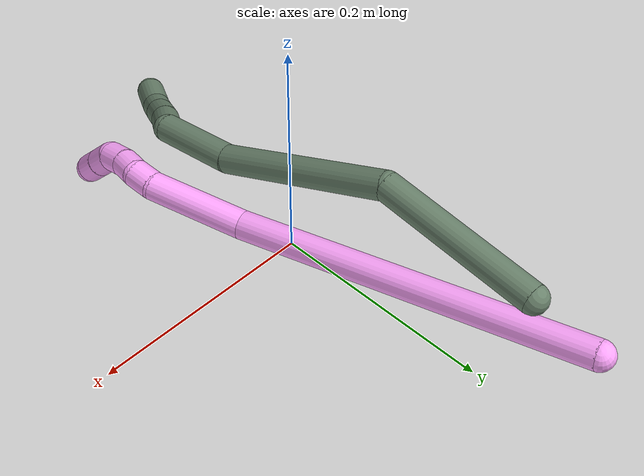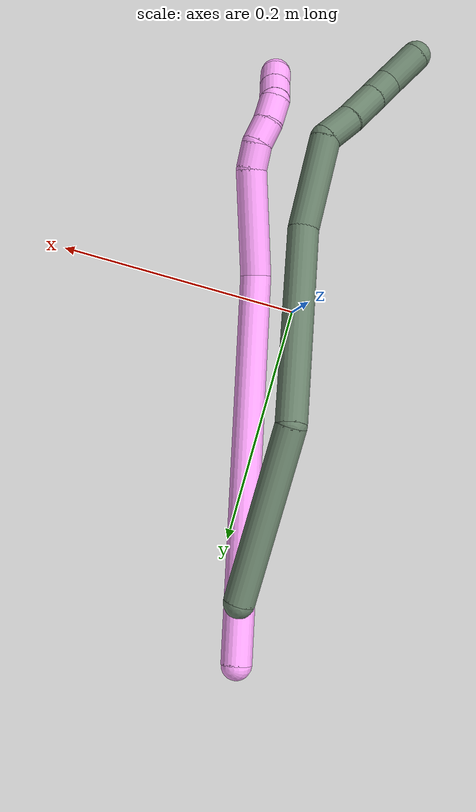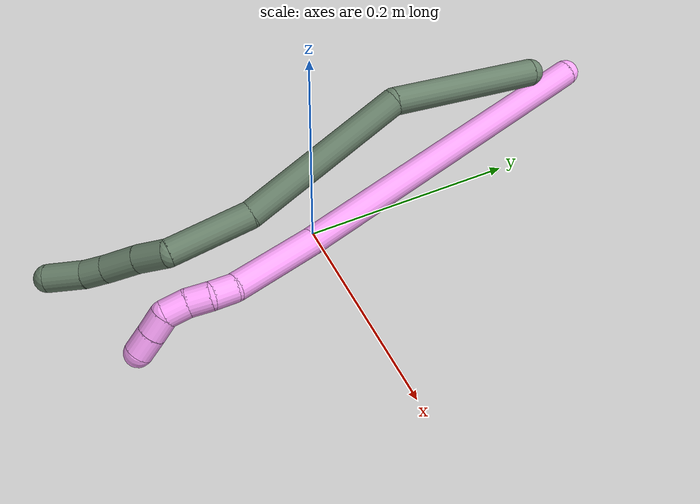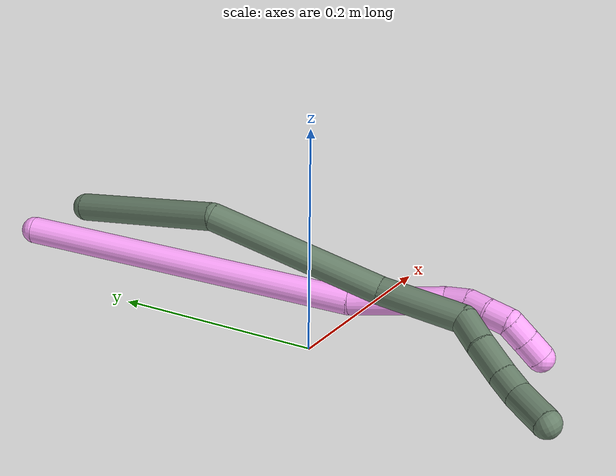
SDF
<sdf version="1.7">
 <world name="default">
  <model name="4">
   <static>0</static>
   <link name="4">
    <collision name="collision-cylinder-e_1_1_4">
     <pose>0.018688 -0.151431 -0.032222 1.78045 0.120127 0.148284</pose>
     <geometry><cylinder><radius>0.0125</radius><length>0.31189</length></cylinder></geometry>
     <surface>
      <friction><ode><mu>1.16</mu><mu2>1.16</mu2><slip1>0</slip1><slip2>0</slip2></ode></friction>
      <contact><ode><kp>1e+06</kp><kd>1</kd><max_vel>0</max_vel><min_depth>0.001</min_depth></ode></contact>
     </surface>
    </collision>
    <visual name="visual-cylinder-e_1_1_4">
     <pose>0.018688 -0.151431 -0.032222 1.78045 0.120127 0.148284</pose>
     <geometry><cylinder><radius>0.0125</radius><length>0.31189</length></cylinder></geometry>
     <material><ambient>1 0.65098 0.996078 1</ambient></material>
    </visual>
    <collision name="collision-cylinder-e_2_4_5">
     <pose>0.042596 -0.345726 -0.063719 1.55389 0.121163 0.119137</pose>
     <geometry><cylinder><radius>0.0125</radius><length>0.086374</length></cylinder></geometry>
     <surface>
      <friction><ode><mu>1.16</mu><mu2>1.16</mu2><slip1>0</slip1><slip2>0</slip2></ode></friction>
      <contact><ode><kp>1e+06</kp><kd>1</kd><max_vel>0</max_vel><min_depth>0.001</min_depth></ode></contact>
     </surface>
    </collision>
    <visual name="visual-cylinder-e_2_4_5">
     <pose>0.042596 -0.345726 -0.063719 1.55389 0.121163 0.119137</pose>
     <geometry><cylinder><radius>0.0125</radius><length>0.086374</length></cylinder></geometry>
     <material><ambient>1 0.65098 0.996078 1</ambient></material>
    </visual>
    <collision name="collision-cylinder-e_3_5_6">
     <pose>0.046738 -0.398944 -0.064111 1.67826 -0.103225 -0.114935</pose>
     <geometry><cylinder><radius>0.0125</radius><length>0.020938</length></cylinder></geometry>
     <surface>
      <friction><ode><mu>1.16</mu><mu2>1.16</mu2><slip1>0</slip1><slip2>0</slip2></ode></friction>
      <contact><ode><kp>1e+06</kp><kd>1</kd><max_vel>0</max_vel><min_depth>0.001</min_depth></ode></contact>
     </surface>
    </collision>
    <visual name="visual-cylinder-e_3_5_6">
     <pose>0.046738 -0.398944 -0.064111 1.67826 -0.103225 -0.114935</pose>
     <geometry><cylinder><radius>0.0125</radius><length>0.020938</length></cylinder></geometry>
     <material><ambient>1 0.65098 0.996078 1</ambient></material>
    </visual>
    <collision name="collision-cylinder-e_4_6_7">
     <pose>0.043375 -0.418192 -0.069225 1.99308 -0.229998 -0.353343</pose>
     <geometry><cylinder><radius>0.0125</radius><length>0.020032</length></cylinder></geometry>
     <surface>
      <friction><ode><mu>1.16</mu><mu2>1.16</mu2><slip1>0</slip1><slip2>0</slip2></ode></friction>
      <contact><ode><kp>1e+06</kp><kd>1</kd><max_vel>0</max_vel><min_depth>0.001</min_depth></ode></contact>
     </surface>
    </collision>
    <visual name="visual-cylinder-e_4_6_7">
     <pose>0.043375 -0.418192 -0.069225 1.99308 -0.229998 -0.353343</pose>
     <geometry><cylinder><radius>0.0125</radius><length>0.020032</length></cylinder></geometry>
     <material><ambient>1 0.65098 0.996078 1</ambient></material>
    </visual>
    <collision name="collision-cylinder-e_5_7_8">
     <pose>0.040615 -0.43642 -0.077507 2.00123 -0.046429 -0.072388</pose>
     <geometry><cylinder><radius>0.0125</radius><length>0.020561</length></cylinder></geometry>
     <surface>
      <friction><ode><mu>1.16</mu><mu2>1.16</mu2><slip1>0</slip1><slip2>0</slip2></ode></friction>
      <contact><ode><kp>1e+06</kp><kd>1</kd><max_vel>0</max_vel><min_depth>0.001</min_depth></ode></contact>
     </surface>
    </collision>
    <visual name="visual-cylinder-e_5_7_8">
     <pose>0.040615 -0.43642 -0.077507 2.00123 -0.046429 -0.072388</pose>
     <geometry><cylinder><radius>0.0125</radius><length>0.020561</length></cylinder></geometry>
     <material><ambient>1 0.65098 0.996078 1</ambient></material>
    </visual>
    <collision name="collision-cylinder-e_6_8_9">
     <pose>0.043668 -0.451801 -0.088985 2.44247 0.359331 0.92448</pose>
     <geometry><cylinder><radius>0.0125</radius><length>0.020076</length></cylinder></geometry>
     <surface>
      <friction><ode><mu>1.16</mu><mu2>1.16</mu2><slip1>0</slip1><slip2>0</slip2></ode></friction>
      <contact><ode><kp>1e+06</kp><kd>1</kd><max_vel>0</max_vel><min_depth>0.001</min_depth></ode></contact>
     </surface>
    </collision>
    <visual name="visual-cylinder-e_6_8_9">
     <pose>0.043668 -0.451801 -0.088985 2.44247 0.359331 0.92448</pose>
     <geometry><cylinder><radius>0.0125</radius><length>0.020076</length></cylinder></geometry>
     <material><ambient>1 0.65098 0.996078 1</ambient></material>
    </visual>
    <collision name="collision-cylinder-e_7_9_2">
     <pose>0.050483 -0.463897 -0.103519 2.45249 0.332542 0.874861</pose>
     <geometry><cylinder><radius>0.0125</radius><length>0.020129</length></cylinder></geometry>
     <surface>
      <friction><ode><mu>1.16</mu><mu2>1.16</mu2><slip1>0</slip1><slip2>0</slip2></ode></friction>
      <contact><ode><kp>1e+06</kp><kd>1</kd><max_vel>0</max_vel><min_depth>0.001</min_depth></ode></contact>
     </surface>
    </collision>
    <visual name="visual-cylinder-e_7_9_2">
     <pose>0.050483 -0.463897 -0.103519 2.45249 0.332542 0.874861</pose>
     <geometry><cylinder><radius>0.0125</radius><length>0.020129</length></cylinder></geometry>
     <material><ambient>1 0.65098 0.996078 1</ambient></material>
    </visual>
    <collision name="collision-sphere-2">
     <pose>0.053769 -0.469946 -0.110862 0 -0 0</pose>
     <geometry><sphere><radius>0.0125</radius></sphere></geometry>
     <surface>
      <friction><ode><mu>1.16</mu><mu2>1.16</mu2><slip1>0</slip1><slip2>0</slip2></ode></friction>
      <contact><ode><kp>1e+06</kp><kd>1</kd><max_vel>0</max_vel><min_depth>0.001</min_depth></ode></contact>
     </surface>
    </collision>
    <visual name="visual-sphere-2">
     <pose>0.053769 -0.469946 -0.110862 0 -0 0</pose>
     <geometry><sphere><radius>0.0125</radius></sphere></geometry>
     <material><ambient>1 0.65098 0.996078 1</ambient></material>
    </visual>
    <collision name="collision-sphere-9">
     <pose>0.047197 -0.457848 -0.096177 0 -0 0</pose>
     <geometry><sphere><radius>0.0125</radius></sphere></geometry>
     <surface>
      <friction><ode><mu>1.16</mu><mu2>1.16</mu2><slip1>0</slip1><slip2>0</slip2></ode></friction>
      <contact><ode><kp>1e+06</kp><kd>1</kd><max_vel>0</max_vel><min_depth>0.001</min_depth></ode></contact>
     </surface>
    </collision>
    <visual name="visual-sphere-9">
     <pose>0.047197 -0.457848 -0.096177 0 -0 0</pose>
     <geometry><sphere><radius>0.0125</radius></sphere></geometry>
     <material><ambient>1 0.65098 0.996078 1</ambient></material>
    </visual>
    <collision name="collision-sphere-4">
     <pose>0.037377 -0.302862 -0.064444 0 -0 0</pose>
     <geometry><sphere><radius>0.0125</radius></sphere></geometry>
     <surface>
      <friction><ode><mu>1.16</mu><mu2>1.16</mu2><slip1>0</slip1><slip2>0</slip2></ode></friction>
      <contact><ode><kp>1e+06</kp><kd>1</kd><max_vel>0</max_vel><min_depth>0.001</min_depth></ode></contact>
     </surface>
    </collision>
    <visual name="visual-sphere-4">
     <pose>0.037377 -0.302862 -0.064444 0 -0 0</pose>
     <geometry><sphere><radius>0.0125</radius></sphere></geometry>
     <material><ambient>1 0.65098 0.996078 1</ambient></material>
    </visual>
    <collision name="collision-sphere-1">
     <geometry><sphere><radius>0.0125</radius></sphere></geometry>
     <surface>
      <friction><ode><mu>1.16</mu><mu2>1.16</mu2><slip1>0</slip1><slip2>0</slip2></ode></friction>
      <contact><ode><kp>1e+06</kp><kd>1</kd><max_vel>0</max_vel><min_depth>0.001</min_depth></ode></contact>
     </surface>
    </collision>
    <visual name="visual-sphere-1">
     <geometry><sphere><radius>0.0125</radius></sphere></geometry>
     <material><ambient>1 0.65098 0.996078 1</ambient></material>
    </visual>
    <collision name="collision-sphere-8">
     <pose>0.040138 -0.445753 -0.081792 0 -0 0</pose>
     <geometry><sphere><radius>0.0125</radius></sphere></geometry>
     <surface>
      <friction><ode><mu>1.16</mu><mu2>1.16</mu2><slip1>0</slip1><slip2>0</slip2></ode></friction>
      <contact><ode><kp>1e+06</kp><kd>1</kd><max_vel>0</max_vel><min_depth>0.001</min_depth></ode></contact>
     </surface>
    </collision>
    <visual name="visual-sphere-8">
     <pose>0.040138 -0.445753 -0.081792 0 -0 0</pose>
     <geometry><sphere><radius>0.0125</radius></sphere></geometry>
     <material><ambient>1 0.65098 0.996078 1</ambient></material>
    </visual>
    <collision name="collision-sphere-5">
     <pose>0.047816 -0.388591 -0.062994 0 -0 0</pose>
     <geometry><sphere><radius>0.0125</radius></sphere></geometry>
     <surface>
      <friction><ode><mu>1.16</mu><mu2>1.16</mu2><slip1>0</slip1><slip2>0</slip2></ode></friction>
      <contact><ode><kp>1e+06</kp><kd>1</kd><max_vel>0</max_vel><min_depth>0.001</min_depth></ode></contact>
     </surface>
    </collision>
    <visual name="visual-sphere-5">
     <pose>0.047816 -0.388591 -0.062994 0 -0 0</pose>
     <geometry><sphere><radius>0.0125</radius></sphere></geometry>
     <material><ambient>1 0.65098 0.996078 1</ambient></material>
    </visual>
    <collision name="collision-sphere-6">
     <pose>0.045659 -0.409297 -0.065228 0 -0 0</pose>
     <geometry><sphere><radius>0.0125</radius></sphere></geometry>
     <surface>
      <friction><ode><mu>1.16</mu><mu2>1.16</mu2><slip1>0</slip1><slip2>0</slip2></ode></friction>
      <contact><ode><kp>1e+06</kp><kd>1</kd><max_vel>0</max_vel><min_depth>0.001</min_depth></ode></contact>
     </surface>
    </collision>
    <visual name="visual-sphere-6">
     <pose>0.045659 -0.409297 -0.065228 0 -0 0</pose>
     <geometry><sphere><radius>0.0125</radius></sphere></geometry>
     <material><ambient>1 0.65098 0.996078 1</ambient></material>
    </visual>
    <collision name="collision-sphere-7">
     <pose>0.041092 -0.427087 -0.073222 0 -0 0</pose>
     <geometry><sphere><radius>0.0125</radius></sphere></geometry>
     <surface>
      <friction><ode><mu>1.16</mu><mu2>1.16</mu2><slip1>0</slip1><slip2>0</slip2></ode></friction>
      <contact><ode><kp>1e+06</kp><kd>1</kd><max_vel>0</max_vel><min_depth>0.001</min_depth></ode></contact>
     </surface>
    </collision>
    <visual name="visual-sphere-7">
     <pose>0.041092 -0.427087 -0.073222 0 -0 0</pose>
     <geometry><sphere><radius>0.0125</radius></sphere></geometry>
     <material><ambient>1 0.65098 0.996078 1</ambient></material>
    </visual>
    <inertial>
     <pose>0.028167 -0.242407 -0.047493 0 -0 0</pose>
     <mass>0.5</mass>
     <inertia>
      <ixx>0.002942</ixx>
      <ixy>0</ixy>
      <ixz>0</ixz>
      <iyy>-0.000135</iyy>
      <iyz>0</iyz>
      <izz>0.002209</izz>
     </inertia>
    </inertial>
   </link>
   <pose>-0.030784 0.284174 0.06647 -0.157335 0.429242 0.135532</pose>
  </model>
  <model name="17">
   <static>0</static>
   <link name="17">
    <collision name="collision-cylinder-e_1_1_4">
     <pose>-0.008477 -0.064928 0.029468 1.14474 -0.118339 -0.0763</pose>
     <geometry><cylinder><radius>0.0125</radius><length>0.143608</length></cylinder></geometry>
     <surface>
      <friction><ode><mu>1.16</mu><mu2>1.16</mu2><slip1>0</slip1><slip2>0</slip2></ode></friction>
      <contact><ode><kp>1e+06</kp><kd>1</kd><max_vel>0</max_vel><min_depth>0.001</min_depth></ode></contact>
     </surface>
    </collision>
    <visual name="visual-cylinder-e_1_1_4">
     <pose>-0.008477 -0.064928 0.029468 1.14474 -0.118339 -0.0763</pose>
     <geometry><cylinder><radius>0.0125</radius><length>0.143608</length></cylinder></geometry>
     <material><ambient>0.415686 0.509804 0.423529 1</ambient></material>
    </visual>
    <collision name="collision-cylinder-e_2_4_5">
     <pose>-0.037675 -0.179601 0.118269 0.697737 -0.261478 -0.095585</pose>
     <geometry><cylinder><radius>0.0125</radius><length>0.160305</length></cylinder></geometry>
     <surface>
      <friction><ode><mu>1.16</mu><mu2>1.16</mu2><slip1>0</slip1><slip2>0</slip2></ode></friction>
      <contact><ode><kp>1e+06</kp><kd>1</kd><max_vel>0</max_vel><min_depth>0.001</min_depth></ode></contact>
     </surface>
    </collision>
    <visual name="visual-cylinder-e_2_4_5">
     <pose>-0.037675 -0.179601 0.118269 0.697737 -0.261478 -0.095585</pose>
     <geometry><cylinder><radius>0.0125</radius><length>0.160305</length></cylinder></geometry>
     <material><ambient>0.415686 0.509804 0.423529 1</ambient></material>
    </visual>
    <collision name="collision-cylinder-e_3_5_6">
     <pose>-0.063384 -0.259045 0.201322 0.896834 -0.130522 -0.062863</pose>
     <geometry><cylinder><radius>0.0125</radius><length>0.076668</length></cylinder></geometry>
     <surface>
      <friction><ode><mu>1.16</mu><mu2>1.16</mu2><slip1>0</slip1><slip2>0</slip2></ode></friction>
      <contact><ode><kp>1e+06</kp><kd>1</kd><max_vel>0</max_vel><min_depth>0.001</min_depth></ode></contact>
     </surface>
    </collision>
    <visual name="visual-cylinder-e_3_5_6">
     <pose>-0.063384 -0.259045 0.201322 0.896834 -0.130522 -0.062863</pose>
     <geometry><cylinder><radius>0.0125</radius><length>0.076668</length></cylinder></geometry>
     <material><ambient>0.415686 0.509804 0.423529 1</ambient></material>
    </visual>
    <collision name="collision-cylinder-e_4_6_7">
     <pose>-0.061559 -0.296306 0.235796 0.612955 0.478212 0.153976</pose>
     <geometry><cylinder><radius>0.0125</radius><length>0.029616</length></cylinder></geometry>
     <surface>
      <friction><ode><mu>1.16</mu><mu2>1.16</mu2><slip1>0</slip1><slip2>0</slip2></ode></friction>
      <contact><ode><kp>1e+06</kp><kd>1</kd><max_vel>0</max_vel><min_depth>0.001</min_depth></ode></contact>
     </surface>
    </collision>
    <visual name="visual-cylinder-e_4_6_7">
     <pose>-0.061559 -0.296306 0.235796 0.612955 0.478212 0.153976</pose>
     <geometry><cylinder><radius>0.0125</radius><length>0.029616</length></cylinder></geometry>
     <material><ambient>0.415686 0.509804 0.423529 1</ambient></material>
    </visual>
    <collision name="collision-cylinder-e_5_7_8">
     <pose>-0.048591 -0.311997 0.259237 0.569726 0.387723 0.114853</pose>
     <geometry><cylinder><radius>0.0125</radius><length>0.032551</length></cylinder></geometry>
     <surface>
      <friction><ode><mu>1.16</mu><mu2>1.16</mu2><slip1>0</slip1><slip2>0</slip2></ode></friction>
      <contact><ode><kp>1e+06</kp><kd>1</kd><max_vel>0</max_vel><min_depth>0.001</min_depth></ode></contact>
     </surface>
    </collision>
    <visual name="visual-cylinder-e_5_7_8">
     <pose>-0.048591 -0.311997 0.259237 0.569726 0.387723 0.114853</pose>
     <geometry><cylinder><radius>0.0125</radius><length>0.032551</length></cylinder></geometry>
     <material><ambient>0.415686 0.509804 0.423529 1</ambient></material>
    </visual>
    <collision name="collision-cylinder-e_6_8_9">
     <pose>-0.038365 -0.326089 0.279924 0.640704 0.38746 0.130001</pose>
     <geometry><cylinder><radius>0.0125</radius><length>0.021557</length></cylinder></geometry>
     <surface>
      <friction><ode><mu>1.16</mu><mu2>1.16</mu2><slip1>0</slip1><slip2>0</slip2></ode></friction>
      <contact><ode><kp>1e+06</kp><kd>1</kd><max_vel>0</max_vel><min_depth>0.001</min_depth></ode></contact>
     </surface>
    </collision>
    <visual name="visual-cylinder-e_6_8_9">
     <pose>-0.038365 -0.326089 0.279924 0.640704 0.38746 0.130001</pose>
     <geometry><cylinder><radius>0.0125</radius><length>0.021557</length></cylinder></geometry>
     <material><ambient>0.415686 0.509804 0.423529 1</ambient></material>
    </visual>
    <collision name="collision-cylinder-e_7_9_2">
     <pose>-0.027075 -0.343992 0.299059 0.820184 0.416291 0.183125</pose>
     <geometry><cylinder><radius>0.0125</radius><length>0.035696</length></cylinder></geometry>
     <surface>
      <friction><ode><mu>1.16</mu><mu2>1.16</mu2><slip1>0</slip1><slip2>0</slip2></ode></friction>
      <contact><ode><kp>1e+06</kp><kd>1</kd><max_vel>0</max_vel><min_depth>0.001</min_depth></ode></contact>
     </surface>
    </collision>
    <visual name="visual-cylinder-e_7_9_2">
     <pose>-0.027075 -0.343992 0.299059 0.820184 0.416291 0.183125</pose>
     <geometry><cylinder><radius>0.0125</radius><length>0.035696</length></cylinder></geometry>
     <material><ambient>0.415686 0.509804 0.423529 1</ambient></material>
    </visual>
    <collision name="collision-sphere-2">
     <pose>-0.019858 -0.355929 0.310193 0 -0 0</pose>
     <geometry><sphere><radius>0.0125</radius></sphere></geometry>
     <surface>
      <friction><ode><mu>1.16</mu><mu2>1.16</mu2><slip1>0</slip1><slip2>0</slip2></ode></friction>
      <contact><ode><kp>1e+06</kp><kd>1</kd><max_vel>0</max_vel><min_depth>0.001</min_depth></ode></contact>
     </surface>
    </collision>
    <visual name="visual-sphere-2">
     <pose>-0.019858 -0.355929 0.310193 0 -0 0</pose>
     <geometry><sphere><radius>0.0125</radius></sphere></geometry>
     <material><ambient>0.415686 0.509804 0.423529 1</ambient></material>
    </visual>
    <collision name="collision-sphere-9">
     <pose>-0.034292 -0.332055 0.287925 0 -0 0</pose>
     <geometry><sphere><radius>0.0125</radius></sphere></geometry>
     <surface>
      <friction><ode><mu>1.16</mu><mu2>1.16</mu2><slip1>0</slip1><slip2>0</slip2></ode></friction>
      <contact><ode><kp>1e+06</kp><kd>1</kd><max_vel>0</max_vel><min_depth>0.001</min_depth></ode></contact>
     </surface>
    </collision>
    <visual name="visual-sphere-9">
     <pose>-0.034292 -0.332055 0.287925 0 -0 0</pose>
     <geometry><sphere><radius>0.0125</radius></sphere></geometry>
     <material><ambient>0.415686 0.509804 0.423529 1</ambient></material>
    </visual>
    <collision name="collision-sphere-4">
     <pose>-0.016955 -0.129855 0.058936 0 -0 0</pose>
     <geometry><sphere><radius>0.0125</radius></sphere></geometry>
     <surface>
      <friction><ode><mu>1.16</mu><mu2>1.16</mu2><slip1>0</slip1><slip2>0</slip2></ode></friction>
      <contact><ode><kp>1e+06</kp><kd>1</kd><max_vel>0</max_vel><min_depth>0.001</min_depth></ode></contact>
     </surface>
    </collision>
    <visual name="visual-sphere-4">
     <pose>-0.016955 -0.129855 0.058936 0 -0 0</pose>
     <geometry><sphere><radius>0.0125</radius></sphere></geometry>
     <material><ambient>0.415686 0.509804 0.423529 1</ambient></material>
    </visual>
    <collision name="collision-sphere-1">
     <geometry><sphere><radius>0.0125</radius></sphere></geometry>
     <surface>
      <friction><ode><mu>1.16</mu><mu2>1.16</mu2><slip1>0</slip1><slip2>0</slip2></ode></friction>
      <contact><ode><kp>1e+06</kp><kd>1</kd><max_vel>0</max_vel><min_depth>0.001</min_depth></ode></contact>
     </surface>
    </collision>
    <visual name="visual-sphere-1">
     <geometry><sphere><radius>0.0125</radius></sphere></geometry>
     <material><ambient>0.415686 0.509804 0.423529 1</ambient></material>
    </visual>
    <collision name="collision-sphere-8">
     <pose>-0.042437 -0.320124 0.271924 0 -0 0</pose>
     <geometry><sphere><radius>0.0125</radius></sphere></geometry>
     <surface>
      <friction><ode><mu>1.16</mu><mu2>1.16</mu2><slip1>0</slip1><slip2>0</slip2></ode></friction>
      <contact><ode><kp>1e+06</kp><kd>1</kd><max_vel>0</max_vel><min_depth>0.001</min_depth></ode></contact>
     </surface>
    </collision>
    <visual name="visual-sphere-8">
     <pose>-0.042437 -0.320124 0.271924 0 -0 0</pose>
     <geometry><sphere><radius>0.0125</radius></sphere></geometry>
     <material><ambient>0.415686 0.509804 0.423529 1</ambient></material>
    </visual>
    <collision name="collision-sphere-5">
     <pose>-0.058395 -0.229348 0.177602 0 -0 0</pose>
     <geometry><sphere><radius>0.0125</radius></sphere></geometry>
     <surface>
      <friction><ode><mu>1.16</mu><mu2>1.16</mu2><slip1>0</slip1><slip2>0</slip2></ode></friction>
      <contact><ode><kp>1e+06</kp><kd>1</kd><max_vel>0</max_vel><min_depth>0.001</min_depth></ode></contact>
     </surface>
    </collision>
    <visual name="visual-sphere-5">
     <pose>-0.058395 -0.229348 0.177602 0 -0 0</pose>
     <geometry><sphere><radius>0.0125</radius></sphere></geometry>
     <material><ambient>0.415686 0.509804 0.423529 1</ambient></material>
    </visual>
    <collision name="collision-sphere-6">
     <pose>-0.068373 -0.288743 0.225042 0 -0 0</pose>
     <geometry><sphere><radius>0.0125</radius></sphere></geometry>
     <surface>
      <friction><ode><mu>1.16</mu><mu2>1.16</mu2><slip1>0</slip1><slip2>0</slip2></ode></friction>
      <contact><ode><kp>1e+06</kp><kd>1</kd><max_vel>0</max_vel><min_depth>0.001</min_depth></ode></contact>
     </surface>
    </collision>
    <visual name="visual-sphere-6">
     <pose>-0.068373 -0.288743 0.225042 0 -0 0</pose>
     <geometry><sphere><radius>0.0125</radius></sphere></geometry>
     <material><ambient>0.415686 0.509804 0.423529 1</ambient></material>
    </visual>
    <collision name="collision-sphere-7">
     <pose>-0.054744 -0.303869 0.246549 0 -0 0</pose>
     <geometry><sphere><radius>0.0125</radius></sphere></geometry>
     <surface>
      <friction><ode><mu>1.16</mu><mu2>1.16</mu2><slip1>0</slip1><slip2>0</slip2></ode></friction>
      <contact><ode><kp>1e+06</kp><kd>1</kd><max_vel>0</max_vel><min_depth>0.001</min_depth></ode></contact>
     </surface>
    </collision>
    <visual name="visual-sphere-7">
     <pose>-0.054744 -0.303869 0.246549 0 -0 0</pose>
     <geometry><sphere><radius>0.0125</radius></sphere></geometry>
     <material><ambient>0.415686 0.509804 0.423529 1</ambient></material>
    </visual>
    <inertial>
     <pose>-0.034629 -0.19243 0.141514 0 -0 0</pose>
     <mass>0.5</mass>
     <inertia>
      <ixx>0.000586</ixx>
      <ixy>0</ixy>
      <ixz>0</ixz>
      <iyy>0.000336</iyy>
      <iyz>0</iyz>
      <izz>0.000629</izz>
     </inertia>
    </inertial>
   </link>
   <pose>-0.01747 0.230225 0.095546 -2.60675 0.094486 3.03138</pose>
  </model>
 </world>
</sdf>
